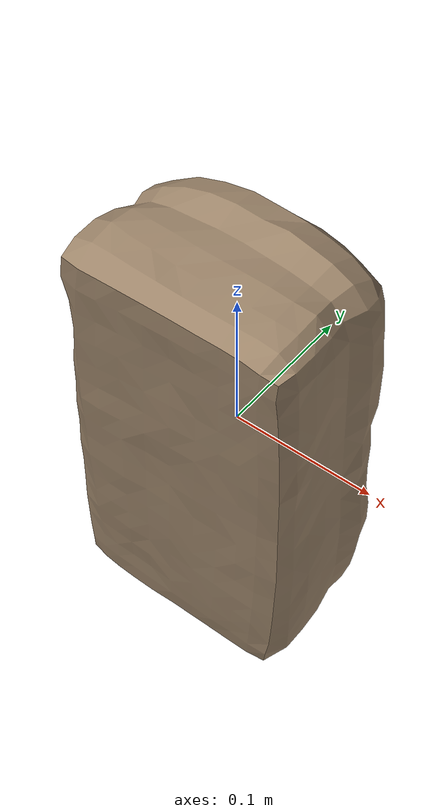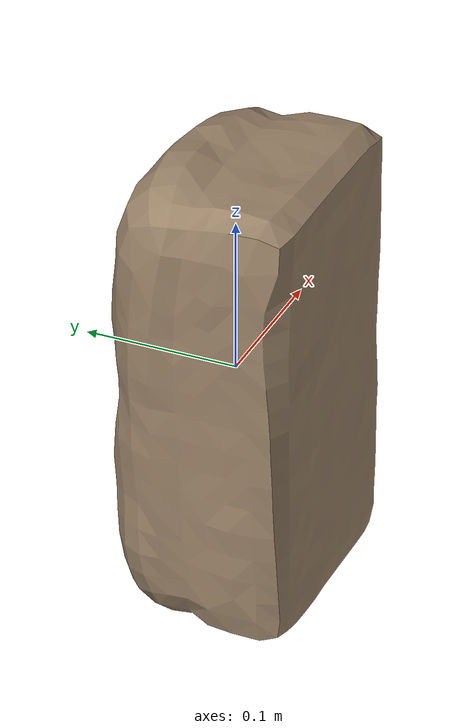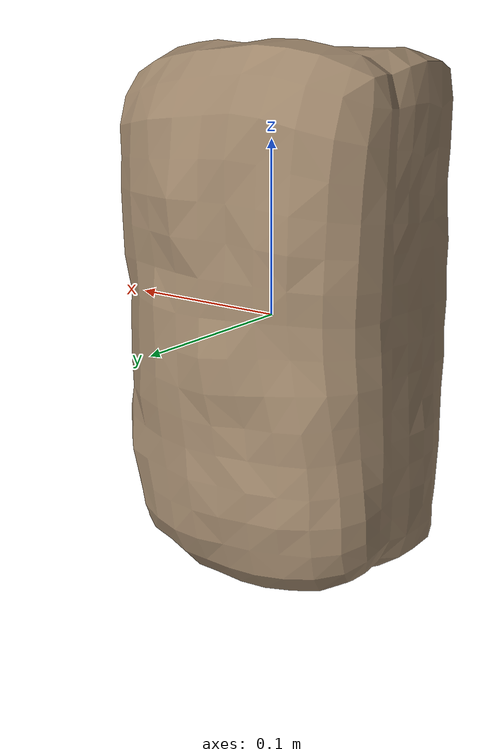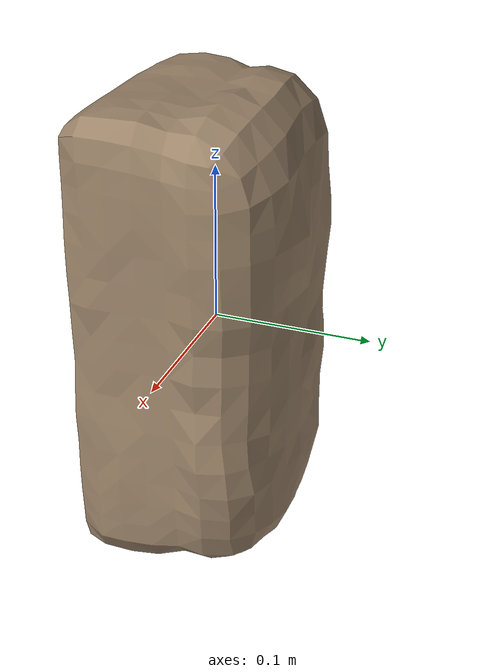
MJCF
<mujoco model="Bread_16">
  <compiler autolimits="true" boundmass="0.01" angle="radian"/>
  <default>
    <default class="/">
      <default class="__VISUAL_MJT__">
        <geom contype="0" conaffinity="0" group="0"/>
      </default>
      <default class="__STRUCTURAL_MJT__">
        <geom contype="8" conaffinity="15" group="4" friction="0.90000000000000002 0.90000000000000002 0.001" solref="0.025000000000000001 1" solimp="0.998 0.998 0.001"/>
      </default>
      <default class="__DYNAMIC_MJT__">
        <geom contype="1" conaffinity="15" group="4" friction="0.90000000000000002 0.90000000000000002 0.001" solref="0.025000000000000001 1" solimp="0.998 0.998 0.001"/>
      </default>
    </default>
  </default>
  <asset>
    <texture name="BumpyBread_Mat1" type="2d" file="BumpyBread_AlbedoTransparency.png"/>
    <material name="material_BumpyBread_Mat1" class="/" texture="BumpyBread_Mat1" specular="0.5" shininess="0.5" rgba="0.80147060000000003 0.70783019999999996 0.59599999999999997 1"/>
    <mesh name="Bread_16_bumpybread_a_mesh" class="/" file="Bread_16_bumpybread_a_mesh/Bread_16_bumpybread_a_mesh.obj" scale="1 1 1"/>
  </asset>
  <worldbody>
    <body name="Bread_16">
      <joint name="Bread_16_free" class="/" type="free" pos="0 0 0" axis="0 0 1" stiffness="0" range="0 0" armature="0" damping="0.10000000000000001" frictionloss="0"/>
      <body name="Bread_16_bumpybread_a_mesh" pos="-0 -0.00020000000000000001 0" quat="1 0 0 0">
        <geom name="Bread_16_bumpybread_a_mesh" class="__VISUAL_MJT__" type="mesh" material="material_BumpyBread_Mat1" shellinertia="false" mesh="Bread_16_bumpybread_a_mesh"/>
        <geom name="Bread_16_PrimitiveCollider_0" class="__DYNAMIC_MJT__" type="box" size="0.084588736295700073 0.067565441131591797 0.15314000844955444" rgba="0 1 0 1" pos="-0 0.00019502639770507812 0" quat="1 0 0 0"/>
      </body>
    </body>
  </worldbody>
</mujoco>
